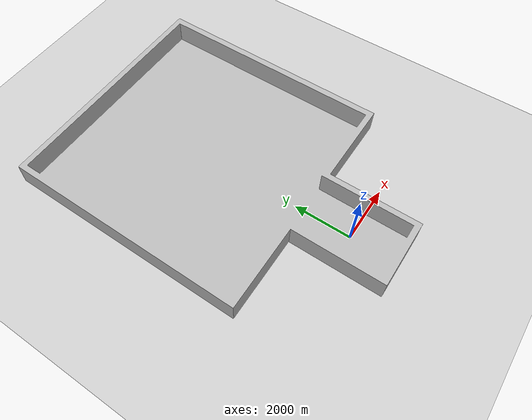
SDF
<?xml version="1.0" ?>
<sdf version="1.5">
  <world name="default">
    <!-- A global light source -->
    <include>
      <uri>model://sun</uri>
    </include>
    <!-- A ground plane -->
    <include>
      <uri>model://ground_plane</uri>
    </include>
    <!-- Custom mesh model -->
    <model name="my_mesh">
      <pose>0 0 0 0 0 1.570796327</pose>
      <static>true</static>
      <link name="body">
          <!-- Visual element to display the mesh -->
          <visual name="visual">
              <geometry>
                  <mesh><uri>file:///home/ruan/dev_ws/src/my_bot/worlds/custom_worlds/Corridor_with_room.stl</uri></mesh>
                  <scale>0.001 0.001 0.001</scale>
              </geometry>
          </visual>
          <!-- Collision element for lidar detection -->
          <collision name="collision">
              <geometry>
                  <mesh><uri>file:///home/ruan/dev_ws/src/my_bot/worlds/custom_worlds/Corridor_with_room.stl</uri></mesh>
                  <scale>0.001 0.001 0.001</scale>
              </geometry>
          </collision>
      </link>
    </model>

    <!-- Add the model state publisher plugin -->
    <plugin name="model_state_publisher" filename="libgazebo_ros_state.so">
      <ros>
        <namespace>/</namespace>
      </ros>
    </plugin>

  </world>
</sdf>
